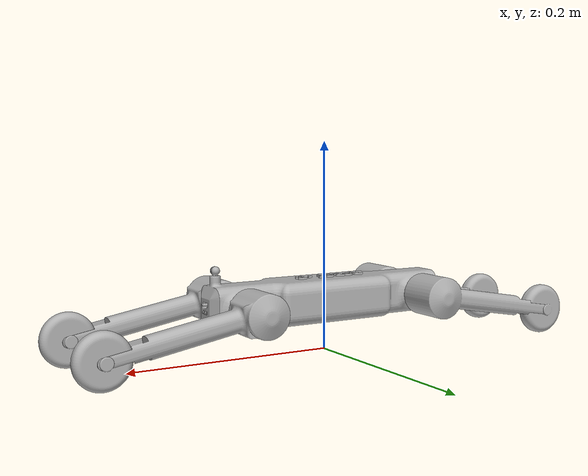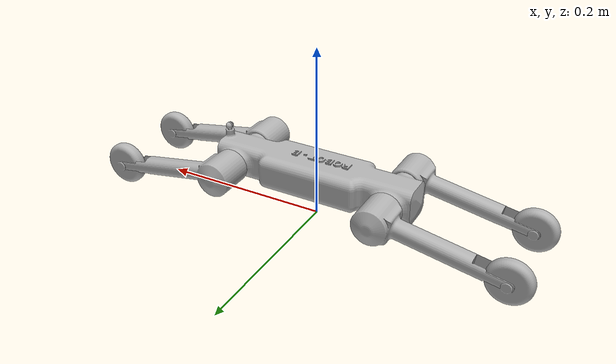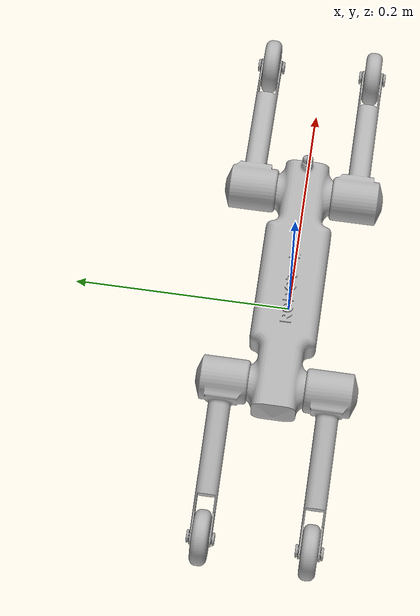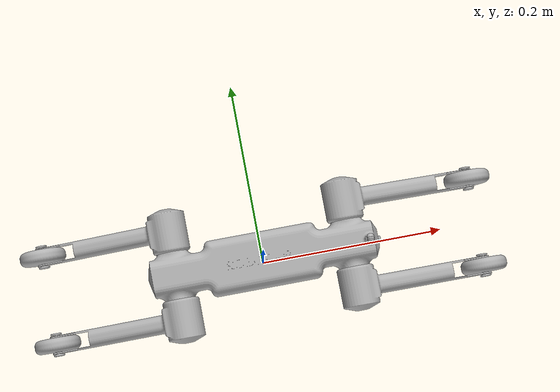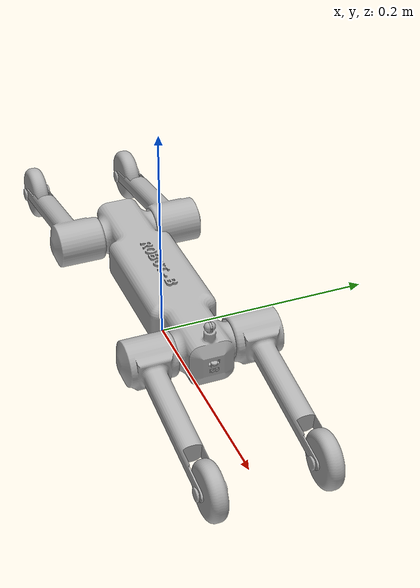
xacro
<?xml version="1.0" ?>
<robot name="robot_b" xmlns:xacro="http://www.ros.org/wiki/xacro">

<xacro:include filename="$(find robot_b_description)/urdf/materials.xacro" />
<xacro:include filename="$(find robot_b_description)/urdf/robot_b.trans" />
<xacro:include filename="$(find robot_b_description)/urdf/robot_b.gazebo" />

<!-- ############### robot b description ########################## -->
<link name="base_link">
  <inertial>
    <origin rpy="0 0 0" xyz="0.0004233514635341757 1.539691687012907e-07 0.05004039910276114"/>
    <mass value="4.620838167060597"/>
    <inertia ixx="0.003115" ixy="0.0" ixz="-9e-06" iyy="0.024644" iyz="-0.0" izz="0.026737"/>
  </inertial>
  <visual>
    <origin rpy="0 0 0" xyz="0 0 0"/>
    <geometry>
      <mesh filename="package://robot_b_description/meshes/base_link.stl" scale="0.001 0.001 0.001"/>
    </geometry>
    <material name="silver"/>
  </visual>
  <collision>
    <origin rpy="0 0 0" xyz="0 0 0"/>
    <geometry>
      <mesh filename="package://robot_b_description/meshes/base_link.stl" scale="0.001 0.001 0.001"/>
    </geometry>
  </collision>
</link>

<link name="imu_1">
  <inertial>
    <origin rpy="0 0 0" xyz="0.0 0.0 -0.0015000000000000013"/>
    <mass value="0.002354999999999988"/>
    <inertia ixx="0.0" ixy="0.0" ixz="-0.0" iyy="0.0" iyz="0.0" izz="0.0"/>
  </inertial>
  <visual>
    <origin rpy="0 0 0" xyz="-0.0 -0.0 -0.03"/>
    <geometry>
      <mesh filename="package://robot_b_description/meshes/imu_1.stl" scale="0.001 0.001 0.001"/>
    </geometry>
    <material name="silver"/>
  </visual>
  <collision>
    <origin rpy="0 0 0" xyz="-0.0 -0.0 -0.03"/>
    <geometry>
      <mesh filename="package://robot_b_description/meshes/imu_1.stl" scale="0.001 0.001 0.001"/>
    </geometry>
  </collision>
</link>

<link name="laser_1">
  <inertial>
    <origin rpy="0 0 0" xyz="-1.3537782006523003e-13 0.0 0.0010000025331974166"/>
    <mass value="0.0004056824315546857"/>
    <inertia ixx="0.0" ixy="0.0" ixz="0.0" iyy="0.0" iyz="-0.0" izz="0.0"/>
  </inertial>
  <visual>
    <origin rpy="0 0 0" xyz="-0.125 -0.0 -0.053"/>
    <geometry>
      <mesh filename="package://robot_b_description/meshes/laser_1.stl" scale="0.001 0.001 0.001"/>
    </geometry>
    <material name="silver"/>
  </visual>
  <collision>
    <origin rpy="0 0 0" xyz="-0.125 -0.0 -0.053"/>
    <geometry>
      <mesh filename="package://robot_b_description/meshes/laser_1.stl" scale="0.001 0.001 0.001"/>
    </geometry>
  </collision>
</link>

<link name="ultra_1">
  <inertial>
    <origin rpy="0 0 0" xyz="0.0005874866749037422 1.4705283407850526e-13 0.005999534602547783"/>
    <mass value="0.00017126719478338393"/>
    <inertia ixx="0.0" ixy="0.0" ixz="0.0" iyy="0.0" iyz="0.0" izz="0.0"/>
  </inertial>
  <visual>
    <origin rpy="0 0 0" xyz="-0.125 0.0 -0.040723"/>
    <geometry>
      <mesh filename="package://robot_b_description/meshes/ultra_1.stl" scale="0.001 0.001 0.001"/>
    </geometry>
    <material name="silver"/>
  </visual>
  <collision>
    <origin rpy="0 0 0" xyz="-0.125 0.0 -0.040723"/>
    <geometry>
      <mesh filename="package://robot_b_description/meshes/ultra_1.stl" scale="0.001 0.001 0.001"/>
    </geometry>
  </collision>
</link>

<link name="cam_x_1">
  <inertial>
    <origin rpy="0 0 0" xyz="-1.1161796750758235e-08 4.402807432283451e-06 0.00846914799590709"/>
    <mass value="0.00362710179089494"/>
    <inertia ixx="0.0" ixy="-0.0" ixz="-0.0" iyy="0.0" iyz="-0.0" izz="0.0"/>
  </inertial>
  <visual>
    <origin rpy="0 0 0" xyz="-0.115 -0.0 -0.07"/>
    <geometry>
      <mesh filename="package://robot_b_description/meshes/cam_x_1.stl" scale="0.001 0.001 0.001"/>
    </geometry>
    <material name="silver"/>
  </visual>
  <collision>
    <origin rpy="0 0 0" xyz="-0.115 -0.0 -0.07"/>
    <geometry>
      <mesh filename="package://robot_b_description/meshes/cam_x_1.stl" scale="0.001 0.001 0.001"/>
    </geometry>
  </collision>
</link>

<link name="cam_y_1">
  <inertial>
    <origin rpy="0 0 0" xyz="1.988988404116876e-07 0.0030005020869749697 -1.4486195061558238e-07"/>
    <mass value="0.0009686319948720002"/>
    <inertia ixx="0.0" ixy="-0.0" ixz="0.0" iyy="0.0" iyz="0.0" izz="0.0"/>
  </inertial>
  <visual>
    <origin rpy="0 0 0" xyz="-0.115 0.003014 -0.083808"/>
    <geometry>
      <mesh filename="package://robot_b_description/meshes/cam_y_1.stl" scale="0.001 0.001 0.001"/>
    </geometry>
    <material name="silver"/>
  </visual>
  <collision>
    <origin rpy="0 0 0" xyz="-0.115 0.003014 -0.083808"/>
    <geometry>
      <mesh filename="package://robot_b_description/meshes/cam_y_1.stl" scale="0.001 0.001 0.001"/>
    </geometry>
  </collision>
</link>

<link name="camera_1">
  <inertial>
    <origin rpy="0 0 0" xyz="0.00024999999183232535 -4.6438878225685376e-07 -3.9232459514426665e-07"/>
    <mass value="3.0826877913351595e-06"/>
    <inertia ixx="0.0" ixy="-0.0" ixz="0.0" iyy="0.0" iyz="0.0" izz="0.0"/>
  </inertial>
  <visual>
    <origin rpy="0 0 0" xyz="-0.11875 -2.8e-05 -0.083808"/>
    <geometry>
      <mesh filename="package://robot_b_description/meshes/camera_1.stl" scale="0.001 0.001 0.001"/>
    </geometry>
    <material name="silver"/>
  </visual>
  <collision>
    <origin rpy="0 0 0" xyz="-0.11875 -2.8e-05 -0.083808"/>
    <geometry>
      <mesh filename="package://robot_b_description/meshes/camera_1.stl" scale="0.001 0.001 0.001"/>
    </geometry>
  </collision>
</link>

<link name="right_f_l_1">
  <inertial>
    <origin rpy="0 0 0" xyz="0.032936489956913534 0.015929738481717963 -0.005807558011588276"/>
    <mass value="0.4847945207188823"/>
    <inertia ixx="0.000107" ixy="-1.4e-05" ixz="0.000117" iyy="0.000762" iyz="2e-06" izz="0.00075"/>
  </inertial>
  <visual>
    <origin rpy="0 0 0" xyz="-0.095 0.0652 -0.05"/>
    <geometry>
      <mesh filename="package://robot_b_description/meshes/right_f_l_1.stl" scale="0.001 0.001 0.001"/>
    </geometry>
    <material name="silver"/>
  </visual>
  <collision>
    <origin rpy="0 0 0" xyz="-0.095 0.0652 -0.05"/>
    <geometry>
      <mesh filename="package://robot_b_description/meshes/right_f_l_1.stl" scale="0.001 0.001 0.001"/>
    </geometry>
  </collision>
</link>

<link name="right_b_l_1">
  <inertial>
    <origin rpy="0 0 0" xyz="-0.03293647837097094 0.0159297384835443 -0.005807623667451946"/>
    <mass value="0.48479452063819106"/>
    <inertia ixx="0.000107" ixy="1.4e-05" ixz="-0.000117" iyy="0.000762" iyz="3e-06" izz="0.00075"/>
  </inertial>
  <visual>
    <origin rpy="0 0 0" xyz="0.095 0.0652 -0.05"/>
    <geometry>
      <mesh filename="package://robot_b_description/meshes/right_b_l_1.stl" scale="0.001 0.001 0.001"/>
    </geometry>
    <material name="silver"/>
  </visual>
  <collision>
    <origin rpy="0 0 0" xyz="0.095 0.0652 -0.05"/>
    <geometry>
      <mesh filename="package://robot_b_description/meshes/right_b_l_1.stl" scale="0.001 0.001 0.001"/>
    </geometry>
  </collision>
</link>

<link name="left_f_l_1">
  <inertial>
    <origin rpy="0 0 0" xyz="0.03293704564262995 -0.015929200926373746 -0.005807661265569891"/>
    <mass value="0.48479527134758854"/>
    <inertia ixx="0.000107" ixy="1.4e-05" ixz="0.000117" iyy="0.000762" iyz="-3e-06" izz="0.00075"/>
  </inertial>
  <visual>
    <origin rpy="0 0 0" xyz="-0.094999 -0.0652 -0.05"/>
    <geometry>
      <mesh filename="package://robot_b_description/meshes/left_f_l_1.stl" scale="0.001 0.001 0.001"/>
    </geometry>
    <material name="silver"/>
  </visual>
  <collision>
    <origin rpy="0 0 0" xyz="-0.094999 -0.0652 -0.05"/>
    <geometry>
      <mesh filename="package://robot_b_description/meshes/left_f_l_1.stl" scale="0.001 0.001 0.001"/>
    </geometry>
  </collision>
</link>

<link name="left_b_l_1">
  <inertial>
    <origin rpy="0 0 0" xyz="-0.03293661092867564 -0.015929200927694225 -0.005807558981250405"/>
    <mass value="0.4847952714197177"/>
    <inertia ixx="0.000107" ixy="-1.4e-05" ixz="-0.000117" iyy="0.000762" iyz="-2e-06" izz="0.00075"/>
  </inertial>
  <visual>
    <origin rpy="0 0 0" xyz="0.095 -0.0652 -0.05"/>
    <geometry>
      <mesh filename="package://robot_b_description/meshes/left_b_l_1.stl" scale="0.001 0.001 0.001"/>
    </geometry>
    <material name="silver"/>
  </visual>
  <collision>
    <origin rpy="0 0 0" xyz="0.095 -0.0652 -0.05"/>
    <geometry>
      <mesh filename="package://robot_b_description/meshes/left_b_l_1.stl" scale="0.001 0.001 0.001"/>
    </geometry>
  </collision>
</link>

<link name="right_f_w_1">
  <inertial>
    <origin rpy="0 0 0" xyz="-4.448926842404166e-05 0.008399699177089354 -1.9688330536855175e-05"/>
    <mass value="0.21855780395289473"/>
    <inertia ixx="3.5e-05" ixy="0.0" ixz="-0.0" iyy="6.2e-05" iyz="0.0" izz="3.5e-05"/>
  </inertial>
  <visual>
    <origin rpy="0 0 0" xyz="-0.235872 0.056763 -0.025188"/>
    <geometry>
      <mesh filename="package://robot_b_description/meshes/right_f_w_1.stl" scale="0.001 0.001 0.001"/>
    </geometry>
    <material name="silver"/>
  </visual>
  <collision>
    <origin rpy="0 0 0" xyz="-0.235872 0.056763 -0.025188"/>
    <geometry>
      <mesh filename="package://robot_b_description/meshes/right_f_w_1.stl" scale="0.001 0.001 0.001"/>
    </geometry>
  </collision>
</link>

<link name="right_b_w_1">
  <inertial>
    <origin rpy="0 0 0" xyz="-6.0510239911076846e-05 0.008399699177089347 -0.00043269111874484276"/>
    <mass value="0.21855780395289442"/>
    <inertia ixx="3.5e-05" ixy="0.0" ixz="-0.0" iyy="6.2e-05" iyz="0.0" izz="3.5e-05"/>
  </inertial>
  <visual>
    <origin rpy="0 0 0" xyz="0.235767 0.056763 -0.025601"/>
    <geometry>
      <mesh filename="package://robot_b_description/meshes/right_b_w_1.stl" scale="0.001 0.001 0.001"/>
    </geometry>
    <material name="silver"/>
  </visual>
  <collision>
    <origin rpy="0 0 0" xyz="0.235767 0.056763 -0.025601"/>
    <geometry>
      <mesh filename="package://robot_b_description/meshes/right_b_w_1.stl" scale="0.001 0.001 0.001"/>
    </geometry>
  </collision>
</link>

<link name="left_f_w_1">
  <inertial>
    <origin rpy="0 0 0" xyz="0.00013196397154127681 -0.008499699177089301 -1.9691118744891156e-05"/>
    <mass value="0.21855780395289456"/>
    <inertia ixx="3.5e-05" ixy="0.0" ixz="0.0" iyy="6.2e-05" iyz="0.0" izz="3.5e-05"/>
  </inertial>
  <visual>
    <origin rpy="0 0 0" xyz="-0.235695 -0.056863 -0.025188"/>
    <geometry>
      <mesh filename="package://robot_b_description/meshes/left_f_w_1.stl" scale="0.001 0.001 0.001"/>
    </geometry>
    <material name="silver"/>
  </visual>
  <collision>
    <origin rpy="0 0 0" xyz="-0.235695 -0.056863 -0.025188"/>
    <geometry>
      <mesh filename="package://robot_b_description/meshes/left_f_w_1.stl" scale="0.001 0.001 0.001"/>
    </geometry>
  </collision>
</link>

<link name="left_b_w_1">
  <inertial>
    <origin rpy="0 0 0" xyz="0.00011448785284223773 -0.008499699177089322 -0.00043268582714180853"/>
    <mass value="0.21855780395289456"/>
    <inertia ixx="3.5e-05" ixy="0.0" ixz="-0.0" iyy="6.2e-05" iyz="0.0" izz="3.5e-05"/>
  </inertial>
  <visual>
    <origin rpy="0 0 0" xyz="0.235942 -0.056863 -0.025601"/>
    <geometry>
      <mesh filename="package://robot_b_description/meshes/left_b_w_1.stl" scale="0.001 0.001 0.001"/>
    </geometry>
    <material name="silver"/>
  </visual>
  <collision>
    <origin rpy="0 0 0" xyz="0.235942 -0.056863 -0.025601"/>
    <geometry>
      <mesh filename="package://robot_b_description/meshes/left_b_w_1.stl" scale="0.001 0.001 0.001"/>
    </geometry>
  </collision>
</link>

<!-- ############## sensor joints ################# -->

<joint name="imu_j" type="fixed">
  <origin rpy="0 0 0" xyz="0.0 0.0 0.03"/>
  <parent link="base_link"/>
  <child link="imu_1"/>
</joint>

<joint name="laser_j" type="fixed">
  <origin rpy="0 0 0" xyz="0.125 0.0 0.053"/>
  <parent link="base_link"/>
  <child link="laser_1"/>
</joint>

<joint name="ultra_j" type="fixed">
  <origin rpy="0 0 0" xyz="0.125 0.0 0.040723"/>
  <parent link="base_link"/>
  <child link="ultra_1"/>
</joint>

<!-- ############## camera joints ################# -->

<joint name="cam_x_j" type="continuous">
  <origin rpy="0 0 0" xyz="0.115 0.0 0.07"/>
  <parent link="base_link"/>
  <child link="cam_x_1"/>
  <axis xyz="0.0 0.0 1.0"/>
</joint>

<joint name="cam_y_j" type="revolute">
  <origin rpy="0 0 0" xyz="0.0 -0.003014 0.013808"/>
  <parent link="cam_x_1"/>
  <child link="cam_y_1"/>
  <axis xyz="0.0 1.0 0.0"/>
  <limit effort="100" lower="-0.872665" upper="0.872665" velocity="100"/>
</joint>

<joint name="camera_j" type="fixed">
  <origin rpy="0 0 0" xyz="0.00375 0.003042 0.0"/>
  <parent link="cam_y_1"/>
  <child link="camera_1"/>
</joint>

<!-- ############## right frount leg joints ################# -->

<joint name="RF1_joint" type="revolute">
  <origin rpy="0 0 0" xyz="0.095 -0.0652 0.05"/>
  <parent link="base_link"/>
  <child link="right_f_l_1"/>
  <axis xyz="0.0 -1.0 0.0"/>
  <limit effort="100" lower="-1.396263" upper="0.0" velocity="100"/>
</joint>

<joint name="RFW_joint" type="continuous">
  <origin rpy="0 0 0" xyz="0.140872 0.008437 -0.024812"/>
  <parent link="right_f_l_1"/>
  <child link="right_f_w_1"/>
  <axis xyz="0.0 -1.0 0.0"/>
</joint>

<!-- ############## right back leg joints ################# -->

<joint name="RB1_joint" type="revolute">
  <origin rpy="0 0 0" xyz="-0.095 -0.0652 0.05"/>
  <parent link="base_link"/>
  <child link="right_b_l_1"/>
  <axis xyz="0.0 -1.0 0.0"/>
  <limit effort="100" lower="0.0" upper="1.396263" velocity="100"/>
</joint>

<joint name="RBW_joint" type="continuous">
  <origin rpy="0 0 0" xyz="-0.140767 0.008437 -0.024399"/>
  <parent link="right_b_l_1"/>
  <child link="right_b_w_1"/>
  <axis xyz="0.0 -1.0 0.0"/>
</joint>

<!-- ############## left frount leg joints ################# -->

<joint name="LF1_joint" type="revolute">
  <origin rpy="0 0 0" xyz="0.094999 0.0652 0.05"/>
  <parent link="base_link"/>
  <child link="left_f_l_1"/>
  <axis xyz="0.0 1.0 0.0"/>
  <limit effort="100" lower="0.0" upper="1.396263" velocity="100"/>
</joint>

<joint name="LFW_joint" type="continuous">
  <origin rpy="0 0 0" xyz="0.140696 -0.008337 -0.024812"/>
  <parent link="left_f_l_1"/>
  <child link="left_f_w_1"/>
  <axis xyz="-0.0 1.0 0.0"/>
</joint>

<!-- ############## left back leg joints ################# -->

<joint name="LB1_joint" type="revolute">
  <origin rpy="0 0 0" xyz="-0.095 0.0652 0.05"/>
  <parent link="base_link"/>
  <child link="left_b_l_1"/>
  <axis xyz="0.0 1.0 0.0"/>
  <limit effort="100" lower="-1.396263" upper="0.0" velocity="100"/>
</joint>

<joint name="LBW_joint" type="continuous">
  <origin rpy="0 0 0" xyz="-0.140942 -0.008337 -0.024399"/>
  <parent link="left_b_l_1"/>
  <child link="left_b_w_1"/>
  <axis xyz="-0.0 1.0 0.0"/>
</joint>

</robot>

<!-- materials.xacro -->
<robot name="robot_b" xmlns:xacro="http://www.ros.org/wiki/xacro" >

<material name="silver">
  <color rgba="0.700 0.700 0.700 1.000"/>
</material>

</robot>
